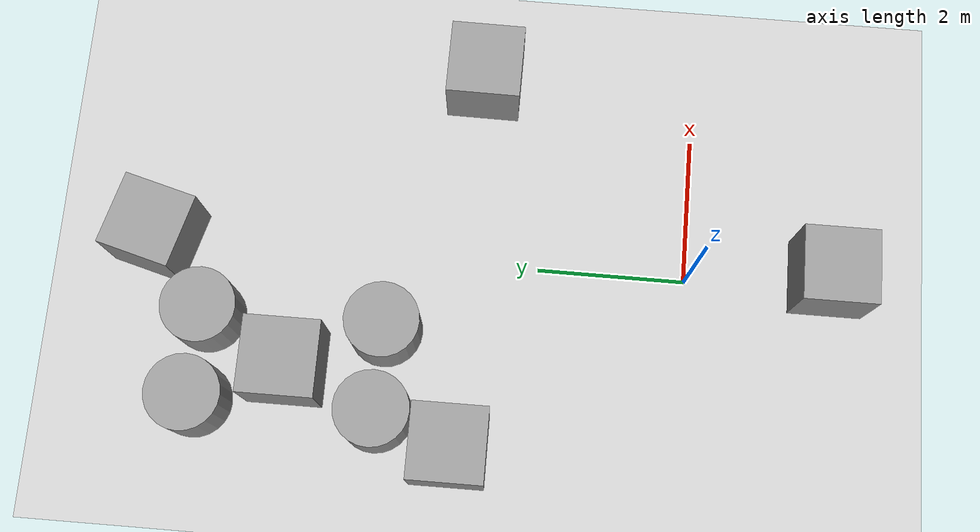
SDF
<sdf version="1.4">
 <world name="default">
  <model name="ground_plane">
   <static>1</static>
   <link name="link">
    <collision name="collision">
     <geometry><plane><normal>0 0 1</normal><size>100 100</size></plane></geometry>
     <surface><friction><ode><mu>100</mu><mu2>50</mu2></ode></friction></surface>
    </collision>
    <visual name="visual">
     <cast_shadows>0</cast_shadows>
     <geometry><plane><normal>0 0 1</normal><size>100 100</size></plane></geometry>
     <material>
      <script><uri>file://media/materials/scripts/gazebo.material</uri><name>Gazebo/Grey</name></script>
     </material>
    </visual>
    <velocity_decay><linear>0</linear><angular>0</angular></velocity_decay>
   </link>
  </model>
  <light name="sun" type="directional">
   <pose>0 0 10 0 -0 0</pose>
   <diffuse>0.8 0.8 0.8 1</diffuse>
   <specular>0.2 0.2 0.2 1</specular>
   <attenuation>
    <range>1000</range>
    <constant>0.9</constant>
    <linear>0.01</linear>
    <quadratic>0.001</quadratic>
   </attenuation>
   <direction>-0.5 0.1 -0.9</direction>
  </light>
  <physics type="ode">
   <max_step_size>0.001</max_step_size>
   <real_time_factor>1</real_time_factor>
   <real_time_update_rate>1000</real_time_update_rate>
   <gravity>0 0 -9.8</gravity>
  </physics>
  <scene><ambient>0.4 0.4 0.4 1</ambient><background>0.7 0.7 0.7 1</background><shadows>1</shadows></scene>
  <spherical_coordinates>
   <surface_model>EARTH_WGS84</surface_model>
   <latitude_deg>0</latitude_deg>
   <longitude_deg>0</longitude_deg>
   <elevation>0</elevation>
   <heading_deg>0</heading_deg>
  </spherical_coordinates>
  <model name="unit_box_1">
   <pose>2.65778 2.93523 0.499699 -1.35525e-20 -7.6e-05 -1.58111</pose>
   <link name="link">
    <inertial>
     <mass>1</mass>
     <inertia><ixx>1</ixx><ixy>0</ixy><ixz>0</ixz><iyy>1</iyy><iyz>0</iyz><izz>1</izz></inertia>
    </inertial>
    <collision name="collision"><geometry><box><size>7.16796 0.023189 1</size></box></geometry></collision>
    <visual name="visual">
     <geometry><box><size>1 1 1</size></box></geometry>
     <material>
      <script><uri>file://media/materials/scripts/gazebo.material</uri><name>Gazebo/Grey</name></script>
     </material>
    </visual>
    <velocity_decay><linear>0</linear><angular>0</angular></velocity_decay>
   </link>
   <static>0</static>
  </model>
  <model name="unit_box_2">
   <pose>-2.53478 3 0.5 0 -0 0</pose>
   <link name="link">
    <inertial>
     <mass>1</mass>
     <inertia><ixx>1</ixx><ixy>0</ixy><ixz>0</ixz><iyy>1</iyy><iyz>0</iyz><izz>1</izz></inertia>
    </inertial>
    <collision name="collision"><geometry><box><size>0.180422 9.79917 1</size></box></geometry></collision>
    <visual name="visual">
     <geometry><box><size>1 1 1</size></box></geometry>
     <material>
      <script><uri>file://media/materials/scripts/gazebo.material</uri><name>Gazebo/Grey</name></script>
     </material>
    </visual>
    <velocity_decay><linear>0</linear><angular>0</angular></velocity_decay>
   </link>
   <static>0</static>
  </model>
  <model name="unit_box_3">
   <pose>0.187114 -1.93063 0.5 0 -0 0</pose>
   <link name="link">
    <inertial>
     <mass>1</mass>
     <inertia><ixx>1</ixx><ixy>0</ixy><ixz>0</ixz><iyy>1</iyy><iyz>0</iyz><izz>1</izz></inertia>
    </inertial>
    <collision name="collision"><geometry><box><size>5.55464 0.083623 1</size></box></geometry></collision>
    <visual name="visual">
     <geometry><box><size>1 1 1</size></box></geometry>
     <material>
      <script><uri>file://media/materials/scripts/gazebo.material</uri><name>Gazebo/Grey</name></script>
     </material>
    </visual>
    <velocity_decay><linear>0</linear><angular>0</angular></velocity_decay>
   </link>
   <static>0</static>
  </model>
  <model name="unit_box_4">
   <pose>0.053906 7.19978 0.5 0 0 -0.263545</pose>
   <link name="link">
    <inertial>
     <mass>1</mass>
     <inertia><ixx>1</ixx><ixy>0</ixy><ixz>0</ixz><iyy>1</iyy><iyz>0</iyz><izz>1</izz></inertia>
    </inertial>
    <collision name="collision"><geometry><box><size>5.74796 0.142343 1</size></box></geometry></collision>
    <visual name="visual">
     <geometry><box><size>1 1 1</size></box></geometry>
     <material>
      <script><uri>file://media/materials/scripts/gazebo.material</uri><name>Gazebo/Grey</name></script>
     </material>
    </visual>
    <velocity_decay><linear>0</linear><angular>0</angular></velocity_decay>
   </link>
   <static>0</static>
  </model>
  <model name="unit_cylinder_1">
   <pose>-2.16493 4.01726 0.358961 0 -0 0</pose>
   <link name="link">
    <inertial>
     <mass>1</mass>
     <inertia><ixx>1</ixx><ixy>0</ixy><ixz>0</ixz><iyy>1</iyy><iyz>0</iyz><izz>1</izz></inertia>
    </inertial>
    <collision name="collision">
     <geometry><cylinder><radius>0.0292863</radius><length>0.719307</length></cylinder></geometry>
    </collision>
    <visual name="visual">
     <geometry><cylinder><radius>0.5</radius><length>1</length></cylinder></geometry>
     <material>
      <script><uri>file://media/materials/scripts/gazebo.material</uri><name>Gazebo/Grey</name></script>
     </material>
    </visual>
    <velocity_decay><linear>0</linear><angular>0</angular></velocity_decay>
   </link>
   <static>0</static>
  </model>
  <model name="unit_cylinder_2">
   <pose>-2.15187 6.45918 0.353499 0 -0 0</pose>
   <link name="link">
    <inertial>
     <mass>1</mass>
     <inertia><ixx>1</ixx><ixy>0</ixy><ixz>0</ixz><iyy>1</iyy><iyz>0</iyz><izz>1</izz></inertia>
    </inertial>
    <collision name="collision">
     <geometry><cylinder><radius>0.0289521</radius><length>0.707059</length></cylinder></geometry>
    </collision>
    <visual name="visual">
     <geometry><cylinder><radius>0.5</radius><length>1</length></cylinder></geometry>
     <material>
      <script><uri>file://media/materials/scripts/gazebo.material</uri><name>Gazebo/Grey</name></script>
     </material>
    </visual>
    <velocity_decay><linear>0</linear><angular>0</angular></velocity_decay>
   </link>
   <static>0</static>
  </model>
  <model name="unit_cylinder_3">
   <pose>-1 4 0.352949 0 -0 0</pose>
   <link name="link">
    <inertial>
     <mass>1</mass>
     <inertia><ixx>1</ixx><ixy>0</ixy><ixz>0</ixz><iyy>1</iyy><iyz>0</iyz><izz>1</izz></inertia>
    </inertial>
    <collision name="collision">
     <geometry><cylinder><radius>0.0267186</radius><length>0.70097</length></cylinder></geometry>
    </collision>
    <visual name="visual">
     <geometry><cylinder><radius>0.5</radius><length>1</length></cylinder></geometry>
     <material>
      <script><uri>file://media/materials/scripts/gazebo.material</uri><name>Gazebo/Grey</name></script>
     </material>
    </visual>
    <velocity_decay><linear>0</linear><angular>0</angular></velocity_decay>
   </link>
   <static>0</static>
  </model>
  <model name="unit_cylinder_4">
   <pose>-0.995913 6.41058 0.352136 0 -0 0</pose>
   <link name="link">
    <inertial>
     <mass>1</mass>
     <inertia><ixx>1</ixx><ixy>0</ixy><ixz>0</ixz><iyy>1</iyy><iyz>0</iyz><izz>1</izz></inertia>
    </inertial>
    <collision name="collision">
     <geometry><cylinder><radius>0.0261739</radius><length>0.704573</length></cylinder></geometry>
    </collision>
    <visual name="visual">
     <geometry><cylinder><radius>0.5</radius><length>1</length></cylinder></geometry>
     <material>
      <script><uri>file://media/materials/scripts/gazebo.material</uri><name>Gazebo/Grey</name></script>
     </material>
    </visual>
    <velocity_decay><linear>0</linear><angular>0</angular></velocity_decay>
   </link>
   <static>0</static>
  </model>
  <model name="unit_box_5">
   <pose>-1.64284 5.2174 0.742298 0 -0 0</pose>
   <link name="link">
    <inertial>
     <mass>1</mass>
     <inertia><ixx>1</ixx><ixy>0</ixy><ixz>0</ixz><iyy>1</iyy><iyz>0</iyz><izz>1</izz></inertia>
    </inertial>
    <collision name="collision"><geometry><box><size>1.54875 3.27596 0.022705</size></box></geometry></collision>
    <visual name="visual">
     <geometry><box><size>1 1 1</size></box></geometry>
     <material>
      <script><uri>file://media/materials/scripts/gazebo.material</uri><name>Gazebo/Grey</name></script>
     </material>
    </visual>
    <velocity_decay><linear>0</linear><angular>0</angular></velocity_decay>
   </link>
   <static>0</static>
  </model>
 </world>
</sdf>
